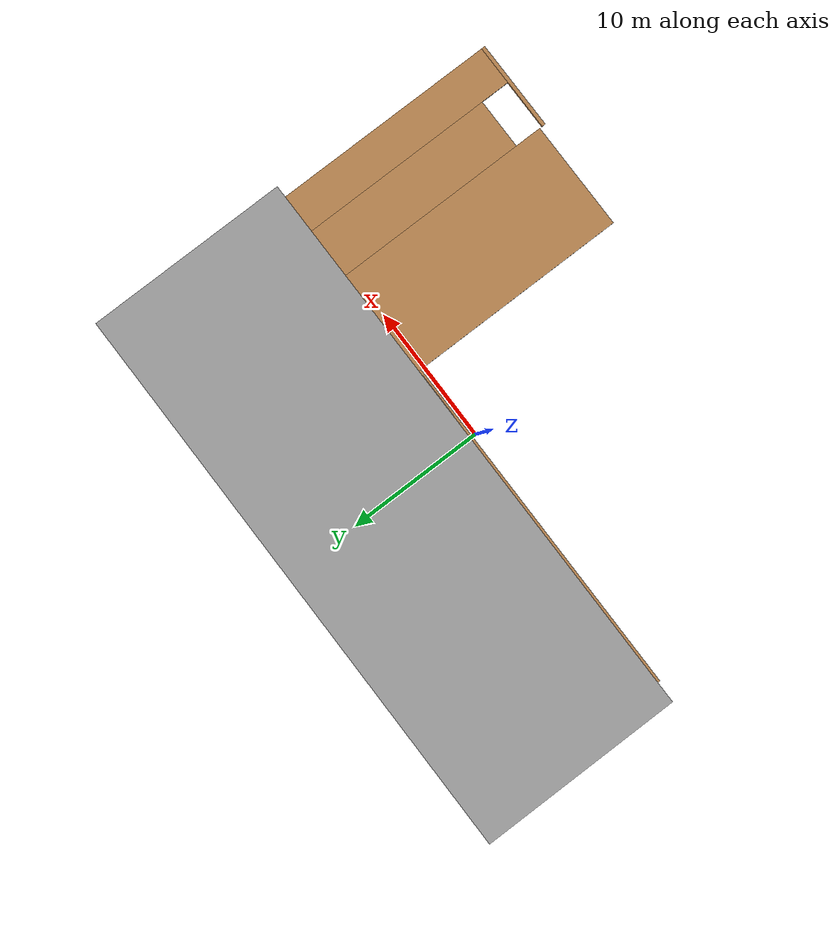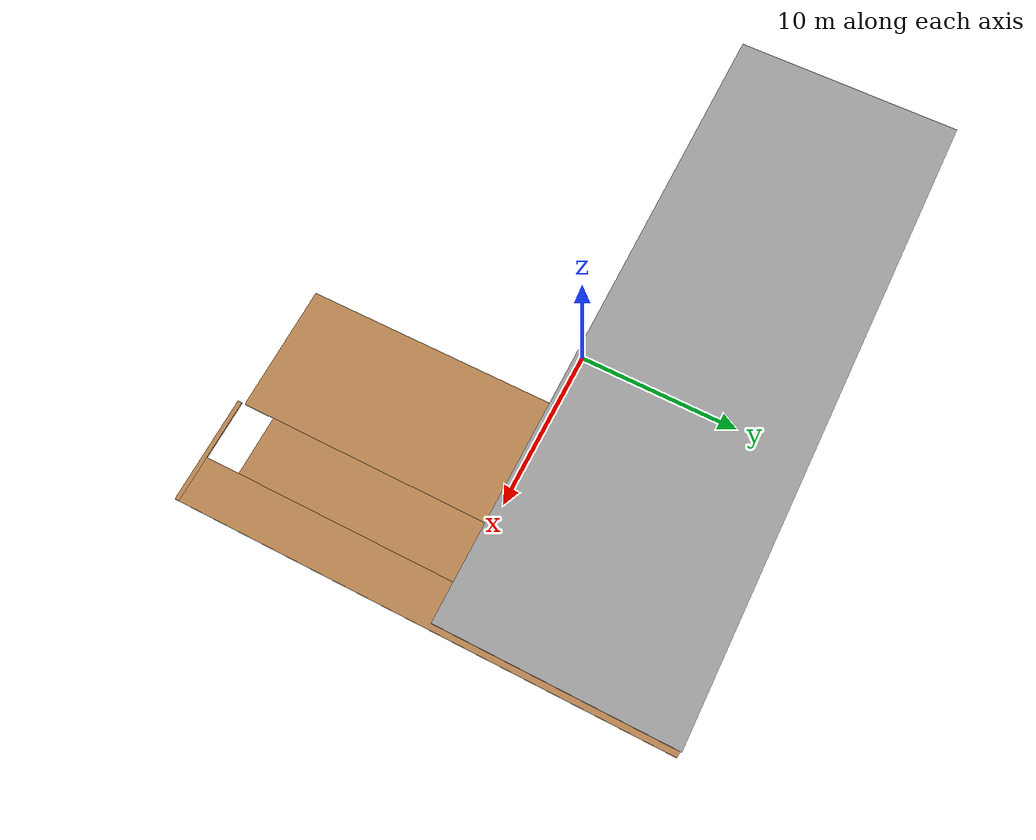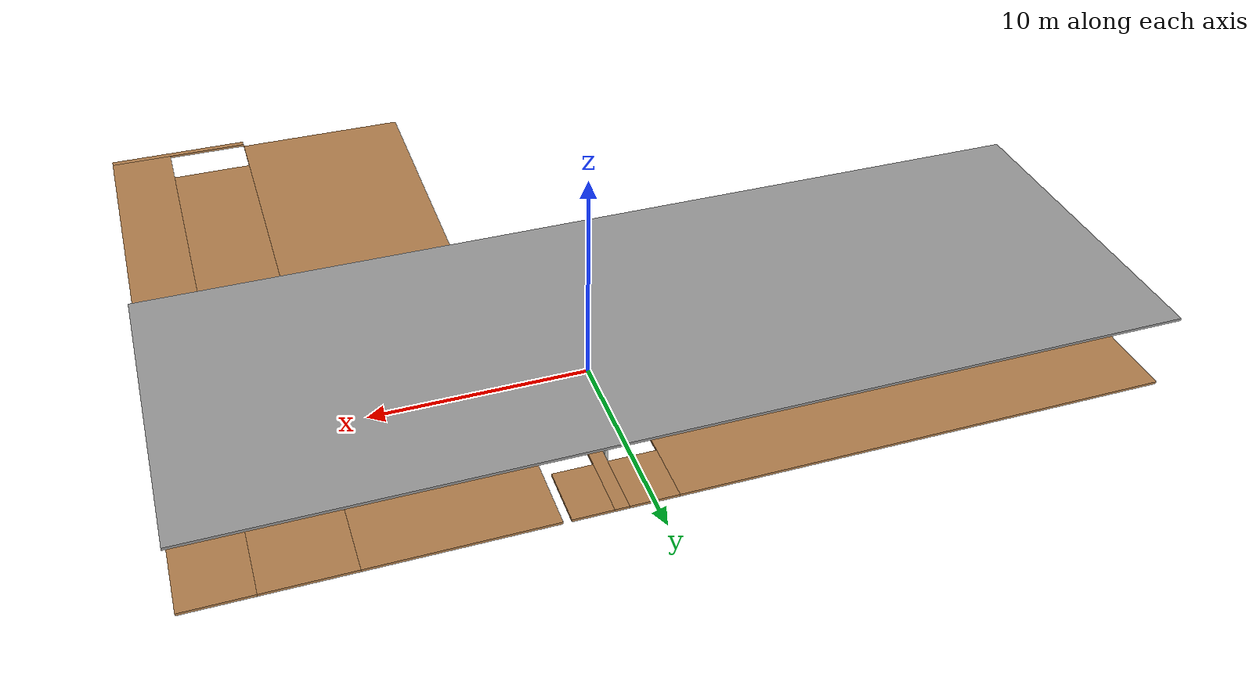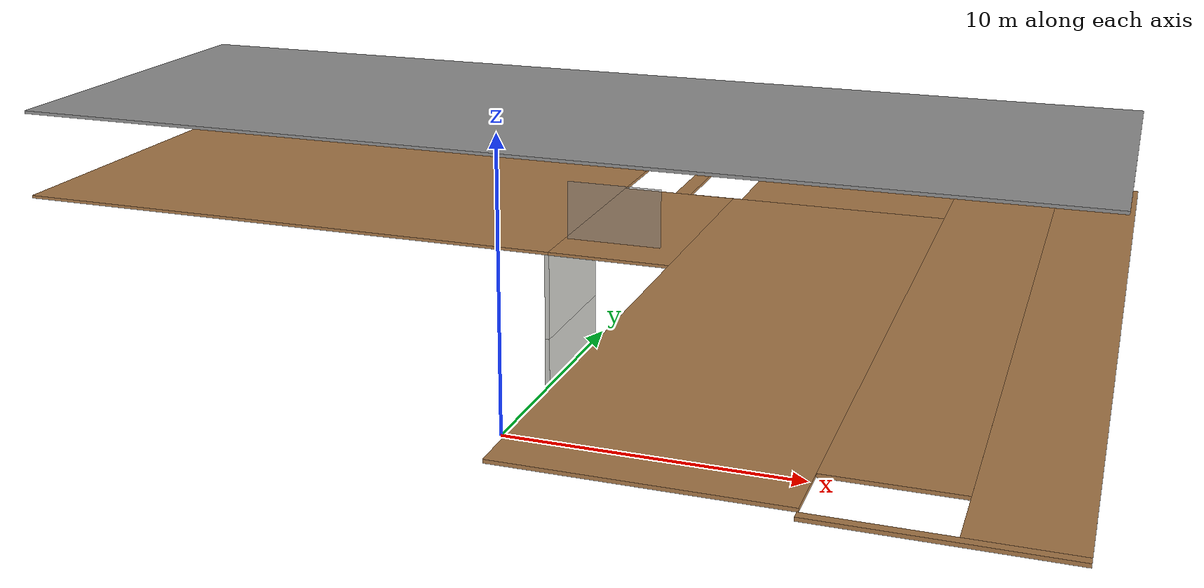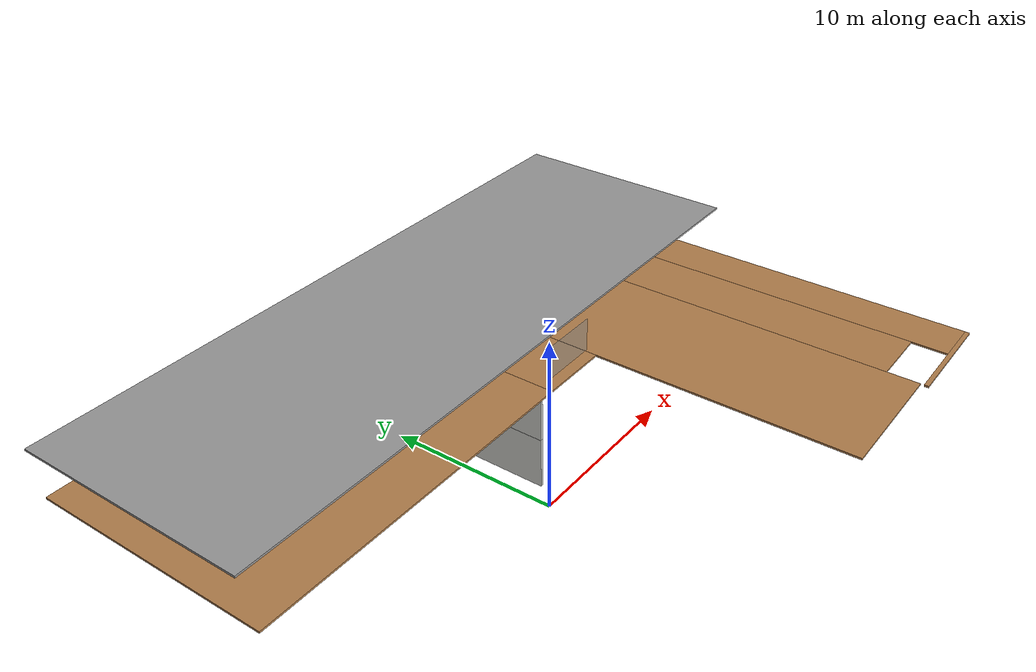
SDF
<sdf version="1.6">
 <model name="add_competition_building">
  <link name="Floor_19">
   <pose>0.111185 0.017212 6 0 -0 0</pose>
   <inertial>
    <mass>1</mass>
    <inertia><ixx>1</ixx><ixy>0</ixy><ixz>0</ixz><iyy>1</iyy><iyz>0</iyz><izz>1</izz></inertia>
   </inertial>
   <visual name="Floor_19_Visual_12">
    <pose>4.39145 13.0153 0.05 0 -0 0</pose>
    <geometry><box><size>1.54234 2.34643 0.1</size></box></geometry>
    <material>
     <script><uri>file://media/materials/scripts/gazebo.material</uri><name>Gazebo/WoodFloor</name></script>
     <ambient>1 1 1 1</ambient>
     <shader type="pixel"><normal_map>__default__</normal_map></shader>
    </material>
    <meta><layer>2</layer></meta>
   </visual>
   <visual name="Floor_19_Visual_7">
    <pose>3.19702 4.67446 0.05 0 -0 0</pose>
    <geometry><box><size>3.93119 7.77785 0.1</size></box></geometry>
    <material>
     <script><uri>file://media/materials/scripts/gazebo.material</uri><name>Gazebo/WoodFloor</name></script>
     <ambient>1 1 1 1</ambient>
     <shader type="pixel"><normal_map>__default__</normal_map></shader>
    </material>
    <meta><layer>2</layer></meta>
   </visual>
   <visual name="Floor_19_Visual_11">
    <pose>2.15643 13.0151 0.05 0 -0 0</pose>
    <geometry><box><size>1.85 2.34685 0.1</size></box></geometry>
    <material>
     <script><uri>file://media/materials/scripts/gazebo.material</uri><name>Gazebo/WoodFloor</name></script>
     <ambient>1 1 1 1</ambient>
     <shader type="pixel"><normal_map>__default__</normal_map></shader>
    </material>
    <meta><layer>2</layer></meta>
   </visual>
   <visual name="Floor_19_Visual_3">
    <pose>17.0737 0.122308 0.05 0 -0 0</pose>
    <geometry><box><size>2.60309 28.1324 0.1</size></box></geometry>
    <material>
     <script><uri>file://media/materials/scripts/gazebo.material</uri><name>Gazebo/WoodFloor</name></script>
     <ambient>1 1 1 1</ambient>
     <shader type="pixel"><normal_map>__default__</normal_map></shader>
    </material>
    <meta><layer>2</layer></meta>
   </visual>
   <visual name="Floor_19_Visual_5">
    <pose>14.0846 1.10138 0.05 0 -0 0</pose>
    <geometry><box><size>3.37505 26.1742 0.1</size></box></geometry>
    <material>
     <script><uri>file://media/materials/scripts/gazebo.material</uri><name>Gazebo/WoodFloor</name></script>
     <ambient>1 1 1 1</ambient>
     <shader type="pixel"><normal_map>__default__</normal_map></shader>
    </material>
    <meta><layer>2</layer></meta>
   </visual>
   <visual name="Floor_19_Visual_9">
    <pose>4.39145 8.57012 0.05 0 -0 0</pose>
    <geometry><box><size>1.54234 0.013466 0.1</size></box></geometry>
    <material>
     <script><uri>file://media/materials/scripts/gazebo.material</uri><name>Gazebo/WoodFloor</name></script>
     <ambient>1 1 1 1</ambient>
     <shader type="pixel"><normal_map>__default__</normal_map></shader>
    </material>
    <meta><layer>2</layer></meta>
   </visual>
   <visual name="Floor_19_Visual_6">
    <pose>-8.39526 7.48702 0.05 0 -0 0</pose>
    <geometry><box><size>19.2534 13.403 0.1</size></box></geometry>
    <material>
     <script><uri>file://media/materials/scripts/gazebo.material</uri><name>Gazebo/WoodFloor</name></script>
     <ambient>1 1 1 1</ambient>
     <shader type="pixel"><normal_map>__default__</normal_map></shader>
    </material>
    <meta><layer>2</layer></meta>
   </visual>
   <visual name="Floor_19_Visual_10">
    <pose>8.93367 11.3827 0.05 0 -0 0</pose>
    <geometry><box><size>6.92679 5.61165 0.1</size></box></geometry>
    <material>
     <script><uri>file://media/materials/scripts/gazebo.material</uri><name>Gazebo/WoodFloor</name></script>
     <ambient>1 1 1 1</ambient>
     <shader type="pixel"><normal_map>__default__</normal_map></shader>
    </material>
    <meta><layer>2</layer></meta>
   </visual>
   <visual name="Floor_19_Visual_4">
    <pose>8.77984 -2.595 0.05 0 -0 0</pose>
    <geometry><box><size>7.23445 22.3437 0.1</size></box></geometry>
    <material>
     <script><uri>file://media/materials/scripts/gazebo.material</uri><name>Gazebo/WoodFloor</name></script>
     <ambient>1 1 1 1</ambient>
     <shader type="pixel"><normal_map>__default__</normal_map></shader>
    </material>
    <meta><layer>2</layer></meta>
   </visual>
   <visual name="Floor_19_Visual_8">
    <pose>3.35085 11.3759 0.05 0 -0 0</pose>
    <geometry><box><size>0.538854 5.62511 0.1</size></box></geometry>
    <material>
     <script><uri>file://media/materials/scripts/gazebo.material</uri><name>Gazebo/WoodFloor</name></script>
     <ambient>1 1 1 1</ambient>
     <shader type="pixel"><normal_map>__default__</normal_map></shader>
    </material>
    <meta><layer>2</layer></meta>
   </visual>
   <visual name="Floor_19_Visual_2">
    <pose>15.3861 -14.0662 0.05 0 -0 0</pose>
    <geometry><box><size>5.97814 0.244616 0.1</size></box></geometry>
    <material>
     <script><uri>file://media/materials/scripts/gazebo.material</uri><name>Gazebo/WoodFloor</name></script>
     <ambient>1 1 1 1</ambient>
     <shader type="pixel"><normal_map>__default__</normal_map></shader>
    </material>
    <meta><layer>2</layer></meta>
   </visual>
   <collision name="Floor_19_Collision_7">
    <pose>3.19702 4.67446 0.05 0 -0 0</pose>
    <geometry><box><size>3.93119 7.77785 0.1</size></box></geometry>
    <surface>
     <friction>
      <ode><mu>1</mu><mu2>1</mu2><fdir1>0 0 0</fdir1><slip1>0</slip1><slip2>0</slip2></ode>
      <torsional>
       <coefficient>1</coefficient>
       <patch_radius>0</patch_radius>
       <surface_radius>0</surface_radius>
       <use_patch_radius>1</use_patch_radius>
       <ode><slip>0</slip></ode>
      </torsional>
     </friction>
     <bounce><restitution_coefficient>0</restitution_coefficient><threshold>1e+06</threshold></bounce>
     <contact>
      <collide_without_contact>0</collide_without_contact>
      <collide_without_contact_bitmask>1</collide_without_contact_bitmask>
      <collide_bitmask>1</collide_bitmask>
      <ode>
       <soft_cfm>0</soft_cfm>
       <soft_erp>0.2</soft_erp>
       <kp>1e+13</kp>
       <kd>1</kd>
       <max_vel>0.01</max_vel>
       <min_depth>0</min_depth>
      </ode>
      <bullet>
       <split_impulse>1</split_impulse>
       <split_impulse_penetration_threshold>-0.01</split_impulse_penetration_threshold>
       <soft_cfm>0</soft_cfm>
       <soft_erp>0.2</soft_erp>
       <kp>1e+13</kp>
       <kd>1</kd>
      </bullet>
     </contact>
    </surface>
   </collision>
   <collision name="Floor_19_Collision_4">
    <pose>8.77984 -2.595 0.05 0 -0 0</pose>
    <geometry><box><size>7.23445 22.3437 0.1</size></box></geometry>
    <surface>
     <friction>
      <ode><mu>1</mu><mu2>1</mu2><fdir1>0 0 0</fdir1><slip1>0</slip1><slip2>0</slip2></ode>
      <torsional>
       <coefficient>1</coefficient>
       <patch_radius>0</patch_radius>
       <surface_radius>0</surface_radius>
       <use_patch_radius>1</use_patch_radius>
       <ode><slip>0</slip></ode>
      </torsional>
     </friction>
     <bounce><restitution_coefficient>0</restitution_coefficient><threshold>1e+06</threshold></bounce>
     <contact>
      <collide_without_contact>0</collide_without_contact>
      <collide_without_contact_bitmask>1</collide_without_contact_bitmask>
      <collide_bitmask>1</collide_bitmask>
      <ode>
       <soft_cfm>0</soft_cfm>
       <soft_erp>0.2</soft_erp>
       <kp>1e+13</kp>
       <kd>1</kd>
       <max_vel>0.01</max_vel>
       <min_depth>0</min_depth>
      </ode>
      <bullet>
       <split_impulse>1</split_impulse>
       <split_impulse_penetration_threshold>-0.01</split_impulse_penetration_threshold>
       <soft_cfm>0</soft_cfm>
       <soft_erp>0.2</soft_erp>
       <kp>1e+13</kp>
       <kd>1</kd>
      </bullet>
     </contact>
    </surface>
   </collision>
   <collision name="Floor_19_Collision_11">
    <pose>2.15643 13.0151 0.05 0 -0 0</pose>
    <geometry><box><size>1.85 2.34685 0.1</size></box></geometry>
    <surface>
     <friction>
      <ode><mu>1</mu><mu2>1</mu2><fdir1>0 0 0</fdir1><slip1>0</slip1><slip2>0</slip2></ode>
      <torsional>
       <coefficient>1</coefficient>
       <patch_radius>0</patch_radius>
       <surface_radius>0</surface_radius>
       <use_patch_radius>1</use_patch_radius>
       <ode><slip>0</slip></ode>
      </torsional>
     </friction>
     <bounce><restitution_coefficient>0</restitution_coefficient><threshold>1e+06</threshold></bounce>
     <contact>
      <collide_without_contact>0</collide_without_contact>
      <collide_without_contact_bitmask>1</collide_without_contact_bitmask>
      <collide_bitmask>1</collide_bitmask>
      <ode>
       <soft_cfm>0</soft_cfm>
       <soft_erp>0.2</soft_erp>
       <kp>1e+13</kp>
       <kd>1</kd>
       <max_vel>0.01</max_vel>
       <min_depth>0</min_depth>
      </ode>
      <bullet>
       <split_impulse>1</split_impulse>
       <split_impulse_penetration_threshold>-0.01</split_impulse_penetration_threshold>
       <soft_cfm>0</soft_cfm>
       <soft_erp>0.2</soft_erp>
       <kp>1e+13</kp>
       <kd>1</kd>
      </bullet>
     </contact>
    </surface>
   </collision>
   <collision name="Floor_19_Collision_2">
    <pose>15.3861 -14.0662 0.05 0 -0 0</pose>
    <geometry><box><size>5.97814 0.244616 0.1</size></box></geometry>
    <surface>
     <friction>
      <ode><mu>1</mu><mu2>1</mu2><fdir1>0 0 0</fdir1><slip1>0</slip1><slip2>0</slip2></ode>
      <torsional>
       <coefficient>1</coefficient>
       <patch_radius>0</patch_radius>
       <surface_radius>0</surface_radius>
       <use_patch_radius>1</use_patch_radius>
       <ode><slip>0</slip></ode>
      </torsional>
     </friction>
     <bounce><restitution_coefficient>0</restitution_coefficient><threshold>1e+06</threshold></bounce>
     <contact>
      <collide_without_contact>0</collide_without_contact>
      <collide_without_contact_bitmask>1</collide_without_contact_bitmask>
      <collide_bitmask>1</collide_bitmask>
      <ode>
       <soft_cfm>0</soft_cfm>
       <soft_erp>0.2</soft_erp>
       <kp>1e+13</kp>
       <kd>1</kd>
       <max_vel>0.01</max_vel>
       <min_depth>0</min_depth>
      </ode>
      <bullet>
       <split_impulse>1</split_impulse>
       <split_impulse_penetration_threshold>-0.01</split_impulse_penetration_threshold>
       <soft_cfm>0</soft_cfm>
       <soft_erp>0.2</soft_erp>
       <kp>1e+13</kp>
       <kd>1</kd>
      </bullet>
     </contact>
    </surface>
   </collision>
   <collision name="Floor_19_Collision_8">
    <pose>3.35085 11.3759 0.05 0 -0 0</pose>
    <geometry><box><size>0.538854 5.62511 0.1</size></box></geometry>
    <surface>
     <friction>
      <ode><mu>1</mu><mu2>1</mu2><fdir1>0 0 0</fdir1><slip1>0</slip1><slip2>0</slip2></ode>
      <torsional>
       <coefficient>1</coefficient>
       <patch_radius>0</patch_radius>
       <surface_radius>0</surface_radius>
       <use_patch_radius>1</use_patch_radius>
       <ode><slip>0</slip></ode>
      </torsional>
     </friction>
     <bounce><restitution_coefficient>0</restitution_coefficient><threshold>1e+06</threshold></bounce>
     <contact>
      <collide_without_contact>0</collide_without_contact>
      <collide_without_contact_bitmask>1</collide_without_contact_bitmask>
      <collide_bitmask>1</collide_bitmask>
      <ode>
       <soft_cfm>0</soft_cfm>
       <soft_erp>0.2</soft_erp>
       <kp>1e+13</kp>
       <kd>1</kd>
       <max_vel>0.01</max_vel>
       <min_depth>0</min_depth>
      </ode>
      <bullet>
       <split_impulse>1</split_impulse>
       <split_impulse_penetration_threshold>-0.01</split_impulse_penetration_threshold>
       <soft_cfm>0</soft_cfm>
       <soft_erp>0.2</soft_erp>
       <kp>1e+13</kp>
       <kd>1</kd>
      </bullet>
     </contact>
    </surface>
   </collision>
   <collision name="Floor_19_Collision_12">
    <pose>4.39145 13.0153 0.05 0 -0 0</pose>
    <geometry><box><size>1.54234 2.34643 0.1</size></box></geometry>
    <surface>
     <friction>
      <ode><mu>1</mu><mu2>1</mu2><fdir1>0 0 0</fdir1><slip1>0</slip1><slip2>0</slip2></ode>
      <torsional>
       <coefficient>1</coefficient>
       <patch_radius>0</patch_radius>
       <surface_radius>0</surface_radius>
       <use_patch_radius>1</use_patch_radius>
       <ode><slip>0</slip></ode>
      </torsional>
     </friction>
     <bounce><restitution_coefficient>0</restitution_coefficient><threshold>1e+06</threshold></bounce>
     <contact>
      <collide_without_contact>0</collide_without_contact>
      <collide_without_contact_bitmask>1</collide_without_contact_bitmask>
      <collide_bitmask>1</collide_bitmask>
      <ode>
       <soft_cfm>0</soft_cfm>
       <soft_erp>0.2</soft_erp>
       <kp>1e+13</kp>
       <kd>1</kd>
       <max_vel>0.01</max_vel>
       <min_depth>0</min_depth>
      </ode>
      <bullet>
       <split_impulse>1</split_impulse>
       <split_impulse_penetration_threshold>-0.01</split_impulse_penetration_threshold>
       <soft_cfm>0</soft_cfm>
       <soft_erp>0.2</soft_erp>
       <kp>1e+13</kp>
       <kd>1</kd>
      </bullet>
     </contact>
    </surface>
   </collision>
   <collision name="Floor_19_Collision_10">
    <pose>8.93367 11.3827 0.05 0 -0 0</pose>
    <geometry><box><size>6.92679 5.61165 0.1</size></box></geometry>
    <surface>
     <friction>
      <ode><mu>1</mu><mu2>1</mu2><fdir1>0 0 0</fdir1><slip1>0</slip1><slip2>0</slip2></ode>
      <torsional>
       <coefficient>1</coefficient>
       <patch_radius>0</patch_radius>
       <surface_radius>0</surface_radius>
       <use_patch_radius>1</use_patch_radius>
       <ode><slip>0</slip></ode>
      </torsional>
     </friction>
     <bounce><restitution_coefficient>0</restitution_coefficient><threshold>1e+06</threshold></bounce>
     <contact>
      <collide_without_contact>0</collide_without_contact>
      <collide_without_contact_bitmask>1</collide_without_contact_bitmask>
      <collide_bitmask>1</collide_bitmask>
      <ode>
       <soft_cfm>0</soft_cfm>
       <soft_erp>0.2</soft_erp>
       <kp>1e+13</kp>
       <kd>1</kd>
       <max_vel>0.01</max_vel>
       <min_depth>0</min_depth>
      </ode>
      <bullet>
       <split_impulse>1</split_impulse>
       <split_impulse_penetration_threshold>-0.01</split_impulse_penetration_threshold>
       <soft_cfm>0</soft_cfm>
       <soft_erp>0.2</soft_erp>
       <kp>1e+13</kp>
       <kd>1</kd>
      </bullet>
     </contact>
    </surface>
   </collision>
   <collision name="Floor_19_Collision_9">
    <pose>4.39145 8.57012 0.05 0 -0 0</pose>
    <geometry><box><size>1.54234 0.013466 0.1</size></box></geometry>
    <surface>
     <friction>
      <ode><mu>1</mu><mu2>1</mu2><fdir1>0 0 0</fdir1><slip1>0</slip1><slip2>0</slip2></ode>
      <torsional>
       <coefficient>1</coefficient>
       <patch_radius>0</patch_radius>
       <surface_radius>0</surface_radius>
       <use_patch_radius>1</use_patch_radius>
       <ode><slip>0</slip></ode>
      </torsional>
     </friction>
     <bounce><restitution_coefficient>0</restitution_coefficient><threshold>1e+06</threshold></bounce>
     <contact>
      <collide_without_contact>0</collide_without_contact>
      <collide_without_contact_bitmask>1</collide_without_contact_bitmask>
      <collide_bitmask>1</collide_bitmask>
      <ode>
       <soft_cfm>0</soft_cfm>
       <soft_erp>0.2</soft_erp>
       <kp>1e+13</kp>
       <kd>1</kd>
       <max_vel>0.01</max_vel>
       <min_depth>0</min_depth>
      </ode>
      <bullet>
       <split_impulse>1</split_impulse>
       <split_impulse_penetration_threshold>-0.01</split_impulse_penetration_threshold>
       <soft_cfm>0</soft_cfm>
       <soft_erp>0.2</soft_erp>
       <kp>1e+13</kp>
       <kd>1</kd>
      </bullet>
     </contact>
    </surface>
   </collision>
   <collision name="Floor_19_Collision_5">
    <pose>14.0846 1.10138 0.05 0 -0 0</pose>
    <geometry><box><size>3.37505 26.1742 0.1</size></box></geometry>
    <surface>
     <friction>
      <ode><mu>1</mu><mu2>1</mu2><fdir1>0 0 0</fdir1><slip1>0</slip1><slip2>0</slip2></ode>
      <torsional>
       <coefficient>1</coefficient>
       <patch_radius>0</patch_radius>
       <surface_radius>0</surface_radius>
       <use_patch_radius>1</use_patch_radius>
       <ode><slip>0</slip></ode>
      </torsional>
     </friction>
     <bounce><restitution_coefficient>0</restitution_coefficient><threshold>1e+06</threshold></bounce>
     <contact>
      <collide_without_contact>0</collide_without_contact>
      <collide_without_contact_bitmask>1</collide_without_contact_bitmask>
      <collide_bitmask>1</collide_bitmask>
      <ode>
       <soft_cfm>0</soft_cfm>
       <soft_erp>0.2</soft_erp>
       <kp>1e+13</kp>
       <kd>1</kd>
       <max_vel>0.01</max_vel>
       <min_depth>0</min_depth>
      </ode>
      <bullet>
       <split_impulse>1</split_impulse>
       <split_impulse_penetration_threshold>-0.01</split_impulse_penetration_threshold>
       <soft_cfm>0</soft_cfm>
       <soft_erp>0.2</soft_erp>
       <kp>1e+13</kp>
       <kd>1</kd>
      </bullet>
     </contact>
    </surface>
   </collision>
   <collision name="Floor_19_Collision_3">
    <pose>17.0737 0.122308 0.05 0 -0 0</pose>
    <geometry><box><size>2.60309 28.1324 0.1</size></box></geometry>
    <surface>
     <friction>
      <ode><mu>1</mu><mu2>1</mu2><fdir1>0 0 0</fdir1><slip1>0</slip1><slip2>0</slip2></ode>
      <torsional>
       <coefficient>1</coefficient>
       <patch_radius>0</patch_radius>
       <surface_radius>0</surface_radius>
       <use_patch_radius>1</use_patch_radius>
       <ode><slip>0</slip></ode>
      </torsional>
     </friction>
     <bounce><restitution_coefficient>0</restitution_coefficient><threshold>1e+06</threshold></bounce>
     <contact>
      <collide_without_contact>0</collide_without_contact>
      <collide_without_contact_bitmask>1</collide_without_contact_bitmask>
      <collide_bitmask>1</collide_bitmask>
      <ode>
       <soft_cfm>0</soft_cfm>
       <soft_erp>0.2</soft_erp>
       <kp>1e+13</kp>
       <kd>1</kd>
       <max_vel>0.01</max_vel>
       <min_depth>0</min_depth>
      </ode>
      <bullet>
       <split_impulse>1</split_impulse>
       <split_impulse_penetration_threshold>-0.01</split_impulse_penetration_threshold>
       <soft_cfm>0</soft_cfm>
       <soft_erp>0.2</soft_erp>
       <kp>1e+13</kp>
       <kd>1</kd>
      </bullet>
     </contact>
    </surface>
   </collision>
   <collision name="Floor_19_Collision_6">
    <pose>-8.39526 7.48702 0.05 0 -0 0</pose>
    <geometry><box><size>19.2534 13.403 0.1</size></box></geometry>
    <surface>
     <friction>
      <ode><mu>1</mu><mu2>1</mu2><fdir1>0 0 0</fdir1><slip1>0</slip1><slip2>0</slip2></ode>
      <torsional>
       <coefficient>1</coefficient>
       <patch_radius>0</patch_radius>
       <surface_radius>0</surface_radius>
       <use_patch_radius>1</use_patch_radius>
       <ode><slip>0</slip></ode>
      </torsional>
     </friction>
     <bounce><restitution_coefficient>0</restitution_coefficient><threshold>1e+06</threshold></bounce>
     <contact>
      <collide_without_contact>0</collide_without_contact>
      <collide_without_contact_bitmask>1</collide_without_contact_bitmask>
      <collide_bitmask>1</collide_bitmask>
      <ode>
       <soft_cfm>0</soft_cfm>
       <soft_erp>0.2</soft_erp>
       <kp>1e+13</kp>
       <kd>1</kd>
       <max_vel>0.01</max_vel>
       <min_depth>0</min_depth>
      </ode>
      <bullet>
       <split_impulse>1</split_impulse>
       <split_impulse_penetration_threshold>-0.01</split_impulse_penetration_threshold>
       <soft_cfm>0</soft_cfm>
       <soft_erp>0.2</soft_erp>
       <kp>1e+13</kp>
       <kd>1</kd>
      </bullet>
     </contact>
    </surface>
   </collision>
  </link>
  <link name="Wall_256">
   <pose>1.117 3.5195 0 0 -0 1.5708</pose>
   <visual name="Wall_256_Visual">
    <pose>0 0 1.5 0 -0 0</pose>
    <geometry><box><size>4.5 0.15 3</size></box></geometry>
    <material>
     <script><uri>file://media/materials/scripts/gazebo.material</uri><name>Gazebo/CeilingTiled</name></script>
     <ambient>1 1 1 1</ambient>
     <shader type="pixel"/>
    </material>
    <meta><layer>0</layer></meta>
   </visual>
   <collision name="Wall_256_Collision">
    <pose>0 0 1.5 0 -0 0</pose>
    <geometry><box><size>4.5 0.15 3</size></box></geometry>
    <surface>
     <friction>
      <ode><mu>1</mu><mu2>1</mu2><fdir1>0 0 0</fdir1><slip1>0</slip1><slip2>0</slip2></ode>
      <torsional>
       <coefficient>1</coefficient>
       <patch_radius>0</patch_radius>
       <surface_radius>0</surface_radius>
       <use_patch_radius>1</use_patch_radius>
       <ode><slip>0</slip></ode>
      </torsional>
     </friction>
     <bounce><restitution_coefficient>0</restitution_coefficient><threshold>1e+06</threshold></bounce>
     <contact>
      <collide_without_contact>0</collide_without_contact>
      <collide_without_contact_bitmask>1</collide_without_contact_bitmask>
      <collide_bitmask>1</collide_bitmask>
      <ode>
       <soft_cfm>0</soft_cfm>
       <soft_erp>0.2</soft_erp>
       <kp>1e+13</kp>
       <kd>1</kd>
       <max_vel>0.01</max_vel>
       <min_depth>0</min_depth>
      </ode>
      <bullet>
       <split_impulse>1</split_impulse>
       <split_impulse_penetration_threshold>-0.01</split_impulse_penetration_threshold>
       <soft_cfm>0</soft_cfm>
       <soft_erp>0.2</soft_erp>
       <kp>1e+13</kp>
       <kd>1</kd>
      </bullet>
     </contact>
    </surface>
   </collision>
  </link>
  <link name="Wall_290">
   <pose>1.117 3.5195 3 0 -0 1.5708</pose>
   <visual name="Wall_290_Visual">
    <pose>0 0 1.5 0 -0 0</pose>
    <geometry><box><size>4.5 0.15 3</size></box></geometry>
    <material>
     <script><uri>file://media/materials/scripts/gazebo.material</uri><name>Gazebo/CeilingTiled</name></script>
     <ambient>1 1 1 1</ambient>
     <shader type="pixel"/>
    </material>
    <meta><layer>1</layer></meta>
   </visual>
   <collision name="Wall_290_Collision">
    <pose>0 0 1.5 0 -0 0</pose>
    <geometry><box><size>4.5 0.15 3</size></box></geometry>
    <surface>
     <friction>
      <ode><mu>1</mu><mu2>1</mu2><fdir1>0 0 0</fdir1><slip1>0</slip1><slip2>0</slip2></ode>
      <torsional>
       <coefficient>1</coefficient>
       <patch_radius>0</patch_radius>
       <surface_radius>0</surface_radius>
       <use_patch_radius>1</use_patch_radius>
       <ode><slip>0</slip></ode>
      </torsional>
     </friction>
     <bounce><restitution_coefficient>0</restitution_coefficient><threshold>1e+06</threshold></bounce>
     <contact>
      <collide_without_contact>0</collide_without_contact>
      <collide_without_contact_bitmask>1</collide_without_contact_bitmask>
      <collide_bitmask>1</collide_bitmask>
      <ode>
       <soft_cfm>0</soft_cfm>
       <soft_erp>0.2</soft_erp>
       <kp>1e+13</kp>
       <kd>1</kd>
       <max_vel>0.01</max_vel>
       <min_depth>0</min_depth>
      </ode>
      <bullet>
       <split_impulse>1</split_impulse>
       <split_impulse_penetration_threshold>-0.01</split_impulse_penetration_threshold>
       <soft_cfm>0</soft_cfm>
       <soft_erp>0.2</soft_erp>
       <kp>1e+13</kp>
       <kd>1</kd>
      </bullet>
     </contact>
    </surface>
   </collision>
  </link>
  <link name="link_1_clone">
   <inertial>
    <mass>0.199587</mass>
    <inertia>
     <ixx>0.0567923</ixx>
     <ixy>0</ixy>
     <ixz>0</ixz>
     <iyy>0.208386</iyy>
     <iyz>0</iyz>
     <izz>0.151637</izz>
    </inertia>
   </inertial>
   <pose>3.381 1.15629 7.43318 0 -0 0</pose>
   <visual name="visual">
    <geometry><box><size>3.01923 0.035768 1.84751</size></box></geometry>
    <material>
     <lighting>1</lighting>
     <script><uri>file://media/materials/scripts/gazebo.material</uri><name>Gazebo/Grey</name></script>
     <shader type="pixel"><normal_map>__default__</normal_map></shader>
     <ambient>0.3 0.3 0.3 1</ambient>
     <diffuse>0.7 0.7 0.7 1</diffuse>
     <specular>0.01 0.01 0.01 1</specular>
     <emissive>0 0 0 1</emissive>
    </material>
    <transparency>0.5</transparency>
   </visual>
   <collision name="collision">
    <geometry><box><size>3.01923 0.035768 1.84751</size></box></geometry>
    <surface>
     <friction>
      <ode><mu>1</mu><mu2>1</mu2><fdir1>0 0 0</fdir1><slip1>0</slip1><slip2>0</slip2></ode>
      <torsional>
       <coefficient>1</coefficient>
       <patch_radius>0</patch_radius>
       <surface_radius>0</surface_radius>
       <use_patch_radius>1</use_patch_radius>
       <ode><slip>0</slip></ode>
      </torsional>
     </friction>
     <bounce><restitution_coefficient>0</restitution_coefficient><threshold>1e+06</threshold></bounce>
     <contact>
      <collide_without_contact>0</collide_without_contact>
      <collide_without_contact_bitmask>1</collide_without_contact_bitmask>
      <collide_bitmask>1</collide_bitmask>
      <ode>
       <soft_cfm>0</soft_cfm>
       <soft_erp>0.2</soft_erp>
       <kp>1e+13</kp>
       <kd>1</kd>
       <max_vel>0.01</max_vel>
       <min_depth>0</min_depth>
      </ode>
      <bullet>
       <split_impulse>1</split_impulse>
       <split_impulse_penetration_threshold>-0.01</split_impulse_penetration_threshold>
       <soft_cfm>0</soft_cfm>
       <soft_erp>0.2</soft_erp>
       <kp>1e+13</kp>
       <kd>1</kd>
      </bullet>
     </contact>
    </surface>
   </collision>
  </link>
  <link name="link_4">
   <inertial>
    <mass>50.7151</mass>
    <inertia><ixx>705.798</ixx><ixy>0</ixy><ixz>0</ixz><iyy>5665.83</iyy><iyz>0</iyz><izz>6371.53</izz></inertia>
   </inertial>
   <pose>0.094554 7.68479 8.95946 0 -0 0</pose>
   <visual name="visual">
    <geometry><box><size>36.6144 12.9225 0.107361</size></box></geometry>
    <material>
     <lighting>1</lighting>
     <script><uri>file://media/materials/scripts/gazebo.material</uri><name>Gazebo/Grey</name></script>
     <shader type="pixel"/>
    </material>
   </visual>
   <collision name="collision">
    <geometry><box><size>36.6144 12.9225 0.107361</size></box></geometry>
    <surface>
     <friction>
      <ode><mu>1</mu><mu2>1</mu2><fdir1>0 0 0</fdir1><slip1>0</slip1><slip2>0</slip2></ode>
      <torsional>
       <coefficient>1</coefficient>
       <patch_radius>0</patch_radius>
       <surface_radius>0</surface_radius>
       <use_patch_radius>1</use_patch_radius>
       <ode><slip>0</slip></ode>
      </torsional>
     </friction>
     <bounce><restitution_coefficient>0</restitution_coefficient><threshold>1e+06</threshold></bounce>
     <contact>
      <collide_without_contact>0</collide_without_contact>
      <collide_without_contact_bitmask>1</collide_without_contact_bitmask>
      <collide_bitmask>1</collide_bitmask>
      <ode>
       <soft_cfm>0</soft_cfm>
       <soft_erp>0.2</soft_erp>
       <kp>1e+13</kp>
       <kd>1</kd>
       <max_vel>0.01</max_vel>
       <min_depth>0</min_depth>
      </ode>
      <bullet>
       <split_impulse>1</split_impulse>
       <split_impulse_penetration_threshold>-0.01</split_impulse_penetration_threshold>
       <soft_cfm>0</soft_cfm>
       <soft_erp>0.2</soft_erp>
       <kp>1e+13</kp>
       <kd>1</kd>
      </bullet>
     </contact>
    </surface>
   </collision>
  </link>
  <static>1</static>
 </model>
</sdf>
